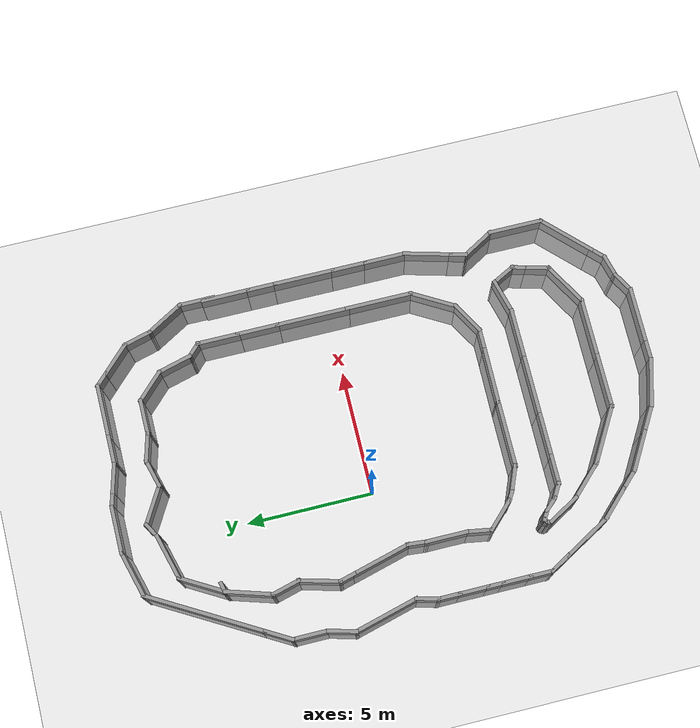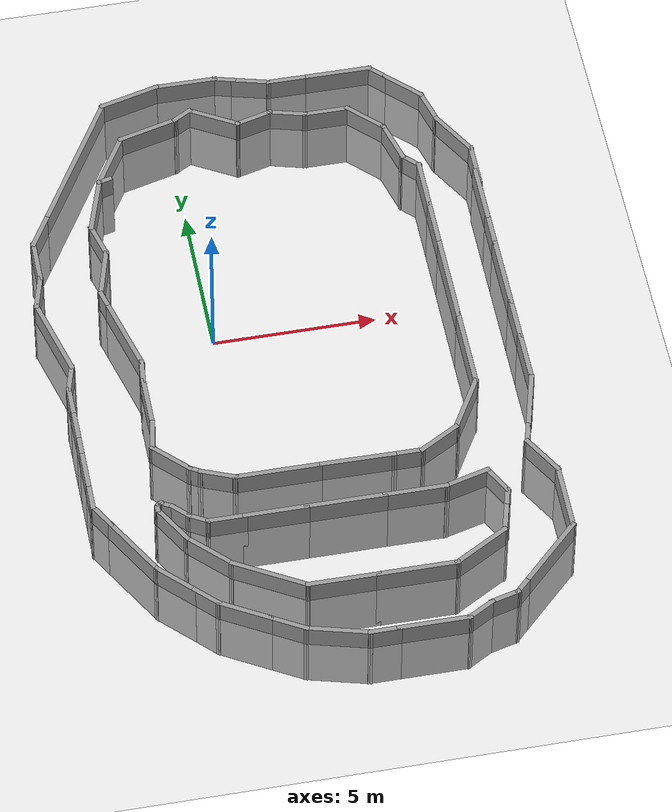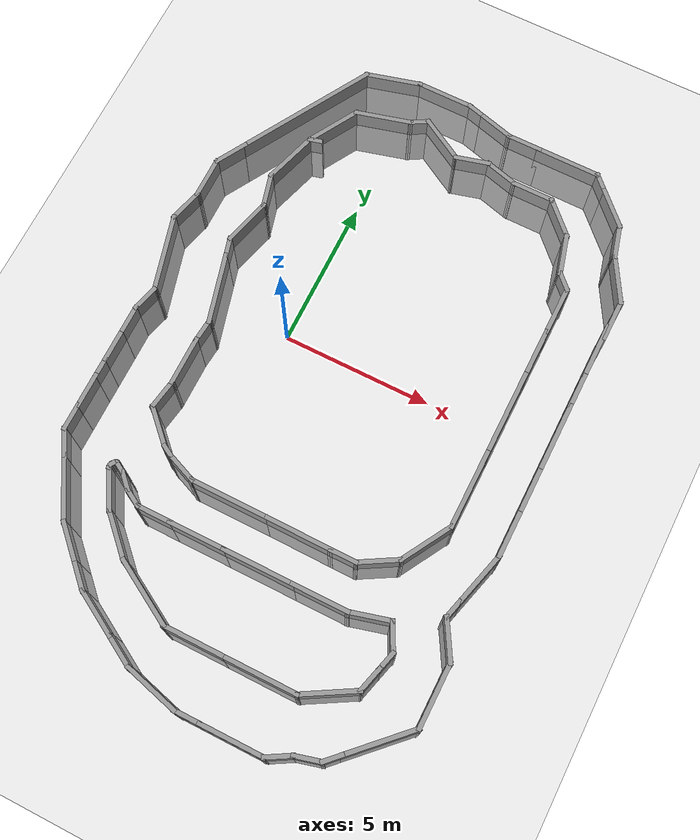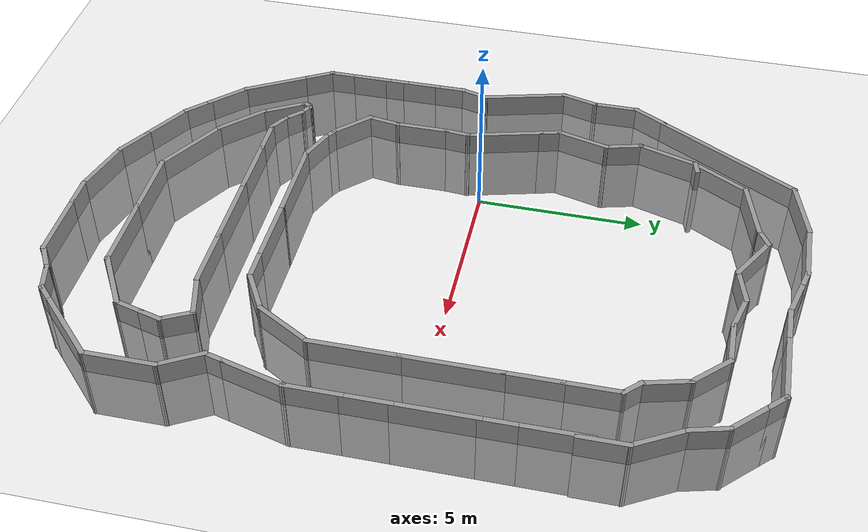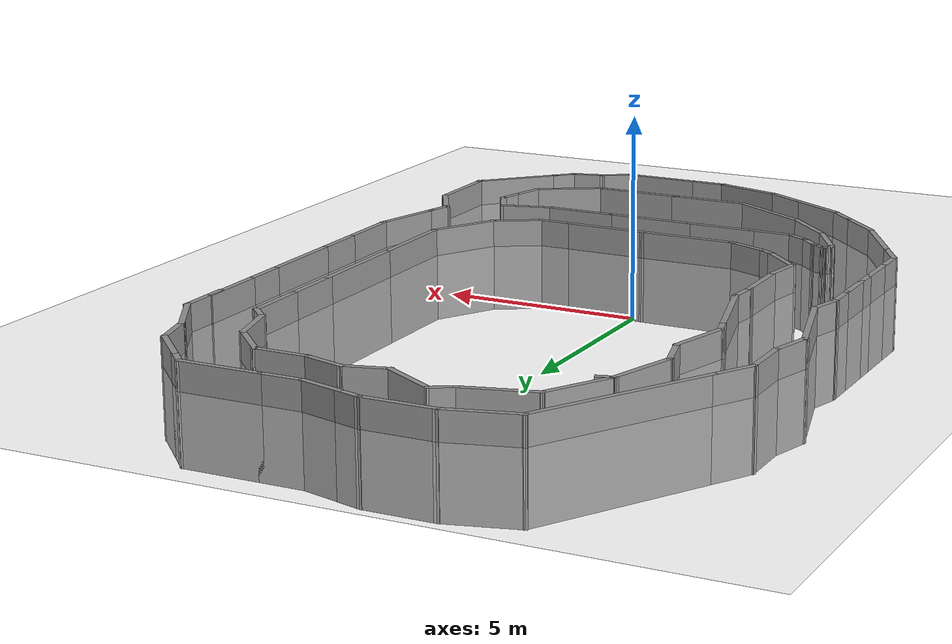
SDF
<sdf version="1.7">
 <world name="default">
  <model name="ground_plane">
   <static>1</static>
   <link name="link">
    <collision name="collision">
     <geometry><plane><normal>0 0 1</normal><size>100 100</size></plane></geometry>
     <surface>
      <contact><collide_bitmask>65535</collide_bitmask></contact>
      <friction><ode><mu>100</mu><mu2>50</mu2></ode></friction>
     </surface>
    </collision>
    <visual name="visual">
     <cast_shadows>0</cast_shadows>
     <geometry><plane><normal>0 0 1</normal><size>100 100</size></plane></geometry>
     <material>
      <script><uri>file://media/materials/scripts/gazebo.material</uri><name>Gazebo/Grey</name></script>
     </material>
    </visual>
   </link>
  </model>
  <model name="shortcut">
   <pose>2 -1 -1.81684 0 -0 0</pose>
   <link name="Wall_0">
    <collision name="Wall_0_Collision">
     <geometry><box><size>1.75 0.15 2.5</size></box></geometry>
     <pose>0 0 1.25 0 -0 0</pose>
    </collision>
    <visual name="Wall_0_Visual">
     <pose>0 0 1.25 0 -0 0</pose>
     <geometry><box><size>1.75 0.15 2.5</size></box></geometry>
     <material>
      <script><uri>file://media/materials/scripts/gazebo.material</uri><name>Gazebo/Grey</name></script>
      <ambient>1 1 1 1</ambient>
     </material>
     <meta><layer>0</layer></meta>
    </visual>
    <pose>-2.93168 -9.47381 0 0 -0 2.61799</pose>
   </link>
   <link name="Wall_1">
    <collision name="Wall_1_Collision">
     <geometry><box><size>1 0.15 2.5</size></box></geometry>
     <pose>0 0 1.25 0 -0 0</pose>
    </collision>
    <visual name="Wall_1_Visual">
     <pose>0 0 1.25 0 -0 0</pose>
     <geometry><box><size>1 0.15 2.5</size></box></geometry>
     <material>
      <script><uri>file://media/materials/scripts/gazebo.material</uri><name>Gazebo/Grey</name></script>
      <ambient>1 1 1 1</ambient>
     </material>
     <meta><layer>0</layer></meta>
    </visual>
    <pose>-3.92502 -8.77329 0 0 -0 2.35619</pose>
   </link>
   <link name="Wall_10">
    <collision name="Wall_10_Collision">
     <geometry><box><size>1 0.15 2.5</size></box></geometry>
     <pose>0 0 1.25 0 -0 0</pose>
    </collision>
    <visual name="Wall_10_Visual">
     <pose>0 0 1.25 0 -0 0</pose>
     <geometry><box><size>1 0.15 2.5</size></box></geometry>
     <material>
      <script><uri>file://media/materials/scripts/gazebo.material</uri><name>Gazebo/Grey</name></script>
      <ambient>1 1 1 1</ambient>
     </material>
     <meta><layer>0</layer></meta>
    </visual>
    <pose>-6.54514 -0.052886 0 0 -0 1.309</pose>
   </link>
   <link name="Wall_100">
    <collision name="Wall_100_Collision">
     <geometry><box><size>1 0.15 2.5</size></box></geometry>
     <pose>0 0 1.25 0 -0 0</pose>
    </collision>
    <visual name="Wall_100_Visual">
     <pose>0 0 1.25 0 -0 0</pose>
     <geometry><box><size>1 0.15 2.5</size></box></geometry>
     <material>
      <script><uri>file://media/materials/scripts/gazebo.material</uri><name>Gazebo/Grey</name></script>
      <ambient>1 1 1 1</ambient>
     </material>
     <meta><layer>0</layer></meta>
    </visual>
    <pose>5.20544 -7.56122 0 0 -0 1.309</pose>
   </link>
   <link name="Wall_101">
    <collision name="Wall_101_Collision">
     <geometry><box><size>0.75 0.15 2.5</size></box></geometry>
     <pose>0 0 1.25 0 -0 0</pose>
    </collision>
    <visual name="Wall_101_Visual">
     <pose>0 0 1.25 0 -0 0</pose>
     <geometry><box><size>0.75 0.15 2.5</size></box></geometry>
     <material>
      <script><uri>file://media/materials/scripts/gazebo.material</uri><name>Gazebo/Grey</name></script>
      <ambient>1 1 1 1</ambient>
     </material>
     <meta><layer>0</layer></meta>
    </visual>
    <pose>5.39309 -6.86093 0 0 -0 1.309</pose>
   </link>
   <link name="Wall_102">
    <collision name="Wall_102_Collision">
     <geometry><box><size>1.09132 0.15 2.5</size></box></geometry>
     <pose>0 0 1.25 0 -0 0</pose>
    </collision>
    <visual name="Wall_102_Visual">
     <pose>0 0 1.25 0 -0 0</pose>
     <geometry><box><size>1.09132 0.15 2.5</size></box></geometry>
     <material>
      <script><uri>file://media/materials/scripts/gazebo.material</uri><name>Gazebo/Grey</name></script>
      <ambient>1 1 1 1</ambient>
     </material>
     <meta><layer>0</layer></meta>
    </visual>
    <pose>5.25504 -6.15282 0 0 -0 2.04684</pose>
   </link>
   <link name="Wall_11">
    <collision name="Wall_11_Collision">
     <geometry><box><size>2.75 0.15 2.5</size></box></geometry>
     <pose>0 0 1.25 0 -0 0</pose>
    </collision>
    <visual name="Wall_11_Visual">
     <pose>0 0 1.25 0 -0 0</pose>
     <geometry><box><size>2.75 0.15 2.5</size></box></geometry>
     <material>
      <script><uri>file://media/materials/scripts/gazebo.material</uri><name>Gazebo/Grey</name></script>
      <ambient>1 1 1 1</ambient>
     </material>
     <meta><layer>0</layer></meta>
    </visual>
    <pose>-6.7716 1.61334 0 0 -0 1.8326</pose>
   </link>
   <link name="Wall_12">
    <collision name="Wall_12_Collision">
     <geometry><box><size>1.25 0.15 2.5</size></box></geometry>
     <pose>0 0 1.25 0 -0 0</pose>
    </collision>
    <visual name="Wall_12_Visual">
     <pose>0 0 1.25 0 -0 0</pose>
     <geometry><box><size>1.25 0.15 2.5</size></box></geometry>
     <material>
      <script><uri>file://media/materials/scripts/gazebo.material</uri><name>Gazebo/Grey</name></script>
      <ambient>1 1 1 1</ambient>
     </material>
     <meta><layer>0</layer></meta>
    </visual>
    <pose>-6.96572 3.4003 0 0 -0 1.309</pose>
   </link>
   <link name="Wall_13">
    <collision name="Wall_13_Collision">
     <geometry><box><size>1.5 0.15 2.5</size></box></geometry>
     <pose>0 0 1.25 0 -0 0</pose>
    </collision>
    <visual name="Wall_13_Visual">
     <pose>0 0 1.25 0 -0 0</pose>
     <geometry><box><size>1.5 0.15 2.5</size></box></geometry>
     <material>
      <script><uri>file://media/materials/scripts/gazebo.material</uri><name>Gazebo/Grey</name></script>
      <ambient>1 1 1 1</ambient>
     </material>
     <meta><layer>0</layer></meta>
    </visual>
    <pose>-6.82337 4.60656 0 0 -0 1.5708</pose>
   </link>
   <link name="Wall_14">
    <collision name="Wall_14_Collision">
     <geometry><box><size>1.25 0.15 2.5</size></box></geometry>
     <pose>0 0 1.25 0 -0 0</pose>
    </collision>
    <visual name="Wall_14_Visual">
     <pose>0 0 1.25 0 -0 0</pose>
     <geometry><box><size>1.25 0.15 2.5</size></box></geometry>
     <material>
      <script><uri>file://media/materials/scripts/gazebo.material</uri><name>Gazebo/Grey</name></script>
      <ambient>1 1 1 1</ambient>
     </material>
     <meta><layer>0</layer></meta>
    </visual>
    <pose>-6.54837 5.75787 0 0 -0 1.0472</pose>
   </link>
   <link name="Wall_15">
    <collision name="Wall_15_Collision">
     <geometry><box><size>5 0.15 2.5</size></box></geometry>
     <pose>0 0 1.25 0 -0 0</pose>
    </collision>
    <visual name="Wall_15_Visual">
     <pose>0 0 1.25 0 -0 0</pose>
     <geometry><box><size>5 0.15 2.5</size></box></geometry>
     <material>
      <script><uri>file://media/materials/scripts/gazebo.material</uri><name>Gazebo/Grey</name></script>
      <ambient>1 1 1 1</ambient>
     </material>
     <meta><layer>0</layer></meta>
    </visual>
    <pose>-5.06087 8.3343 0 0 -0 1.0472</pose>
   </link>
   <link name="Wall_17">
    <collision name="Wall_17_Collision">
     <geometry><box><size>1.25 0.15 2.5</size></box></geometry>
     <pose>0 0 1.25 0 -0 0</pose>
    </collision>
    <visual name="Wall_17_Visual">
     <pose>0 0 1.25 0 -0 0</pose>
     <geometry><box><size>1.25 0.15 2.5</size></box></geometry>
     <material>
      <script><uri>file://media/materials/scripts/gazebo.material</uri><name>Gazebo/Grey</name></script>
      <ambient>1 1 1 1</ambient>
     </material>
     <meta><layer>0</layer></meta>
    </visual>
    <pose>-1.76254 -10.1488 0 0 -0 -0.523599</pose>
   </link>
   <link name="Wall_18">
    <collision name="Wall_18_Collision">
     <geometry><box><size>2 0.15 2.5</size></box></geometry>
     <pose>0 0 1.25 0 -0 0</pose>
    </collision>
    <visual name="Wall_18_Visual">
     <pose>0 0 1.25 0 -0 0</pose>
     <geometry><box><size>2 0.15 2.5</size></box></geometry>
     <material>
      <script><uri>file://media/materials/scripts/gazebo.material</uri><name>Gazebo/Grey</name></script>
      <ambient>1 1 1 1</ambient>
     </material>
     <meta><layer>0</layer></meta>
    </visual>
    <pose>-0.392749 -10.6632 0 0 -0 -0.261799</pose>
   </link>
   <link name="Wall_19">
    <collision name="Wall_19_Collision">
     <geometry><box><size>1 0.15 2.5</size></box></geometry>
     <pose>0 0 1.25 0 -0 0</pose>
    </collision>
    <visual name="Wall_19_Visual">
     <pose>0 0 1.25 0 -0 0</pose>
     <geometry><box><size>1 0.15 2.5</size></box></geometry>
     <material>
      <script><uri>file://media/materials/scripts/gazebo.material</uri><name>Gazebo/Grey</name></script>
      <ambient>1 1 1 1</ambient>
     </material>
     <meta><layer>0</layer></meta>
    </visual>
    <pose>0.925733 -10.9026 0 0 -0 0</pose>
   </link>
   <link name="Wall_2">
    <collision name="Wall_2_Collision">
     <geometry><box><size>1.5 0.15 2.5</size></box></geometry>
     <pose>0 0 1.25 0 -0 0</pose>
    </collision>
    <visual name="Wall_2_Visual">
     <pose>0 0 1.25 0 -0 0</pose>
     <geometry><box><size>1.5 0.15 2.5</size></box></geometry>
     <material>
      <script><uri>file://media/materials/scripts/gazebo.material</uri><name>Gazebo/Grey</name></script>
      <ambient>1 1 1 1</ambient>
     </material>
     <meta><layer>0</layer></meta>
    </visual>
    <pose>-4.70284 -7.99548 0 0 -0 2.35619</pose>
   </link>
   <link name="Wall_20">
    <collision name="Wall_20_Collision">
     <geometry><box><size>2.25 0.15 2.5</size></box></geometry>
     <pose>0 0 1.25 0 -0 0</pose>
    </collision>
    <visual name="Wall_20_Visual">
     <pose>0 0 1.25 0 -0 0</pose>
     <geometry><box><size>2.25 0.15 2.5</size></box></geometry>
     <material>
      <script><uri>file://media/materials/scripts/gazebo.material</uri><name>Gazebo/Grey</name></script>
      <ambient>1 1 1 1</ambient>
     </material>
     <meta><layer>0</layer></meta>
    </visual>
    <pose>2.40073 -10.9026 0 0 -0 0</pose>
   </link>
   <link name="Wall_21">
    <collision name="Wall_21_Collision">
     <geometry><box><size>1 0.15 2.5</size></box></geometry>
     <pose>0 0 1.25 0 -0 0</pose>
    </collision>
    <visual name="Wall_21_Visual">
     <pose>0 0 1.25 0 -0 0</pose>
     <geometry><box><size>1 0.15 2.5</size></box></geometry>
     <material>
      <script><uri>file://media/materials/scripts/gazebo.material</uri><name>Gazebo/Grey</name></script>
      <ambient>1 1 1 1</ambient>
     </material>
     <meta><layer>0</layer></meta>
    </visual>
    <pose>3.81879 -10.6901 0 0 -0 0.523599</pose>
   </link>
   <link name="Wall_22">
    <collision name="Wall_22_Collision">
     <geometry><box><size>1 0.15 2.5</size></box></geometry>
     <pose>0 0 1.25 0 -0 0</pose>
    </collision>
    <visual name="Wall_22_Visual">
     <pose>0 0 1.25 0 -0 0</pose>
     <geometry><box><size>1 0.15 2.5</size></box></geometry>
     <material>
      <script><uri>file://media/materials/scripts/gazebo.material</uri><name>Gazebo/Grey</name></script>
      <ambient>1 1 1 1</ambient>
     </material>
     <meta><layer>0</layer></meta>
    </visual>
    <pose>4.59737 -10.3676 0 0 -0 0.261799</pose>
   </link>
   <link name="Wall_23">
    <collision name="Wall_23_Collision">
     <geometry><box><size>0.75 0.15 2.5</size></box></geometry>
     <pose>0 0 1.25 0 -0 0</pose>
    </collision>
    <visual name="Wall_23_Visual">
     <pose>0 0 1.25 0 -0 0</pose>
     <geometry><box><size>0.75 0.15 2.5</size></box></geometry>
     <material>
      <script><uri>file://media/materials/scripts/gazebo.material</uri><name>Gazebo/Grey</name></script>
      <ambient>1 1 1 1</ambient>
     </material>
     <meta><layer>0</layer></meta>
    </visual>
    <pose>5.22002 -10.0455 0 0 -0 0.785398</pose>
   </link>
   <link name="Wall_24">
    <collision name="Wall_24_Collision">
     <geometry><box><size>2.5 0.15 2.5</size></box></geometry>
     <pose>0 0 1.25 0 -0 0</pose>
    </collision>
    <visual name="Wall_24_Visual">
     <pose>0 0 1.25 0 -0 0</pose>
     <geometry><box><size>2.5 0.15 2.5</size></box></geometry>
     <material>
      <script><uri>file://media/materials/scripts/gazebo.material</uri><name>Gazebo/Grey</name></script>
      <ambient>1 1 1 1</ambient>
     </material>
     <meta><layer>0</layer></meta>
    </visual>
    <pose>6.26301 -9.00252 0 0 -0 0.785398</pose>
   </link>
   <link name="Wall_25">
    <collision name="Wall_25_Collision">
     <geometry><box><size>2.25 0.15 2.5</size></box></geometry>
     <pose>0 0 1.25 0 -0 0</pose>
    </collision>
    <visual name="Wall_25_Visual">
     <pose>0 0 1.25 0 -0 0</pose>
     <geometry><box><size>2.25 0.15 2.5</size></box></geometry>
     <material>
      <script><uri>file://media/materials/scripts/gazebo.material</uri><name>Gazebo/Grey</name></script>
      <ambient>1 1 1 1</ambient>
     </material>
     <meta><layer>0</layer></meta>
    </visual>
    <pose>7.09386 -7.12167 0 0 -0 1.5708</pose>
   </link>
   <link name="Wall_26">
    <collision name="Wall_26_Collision">
     <geometry><box><size>1.5 0.15 2.5</size></box></geometry>
     <pose>0 0 1.25 0 -0 0</pose>
    </collision>
    <visual name="Wall_26_Visual">
     <pose>0 0 1.25 0 -0 0</pose>
     <geometry><box><size>1.5 0.15 2.5</size></box></geometry>
     <material>
      <script><uri>file://media/materials/scripts/gazebo.material</uri><name>Gazebo/Grey</name></script>
      <ambient>1 1 1 1</ambient>
     </material>
     <meta><layer>0</layer></meta>
    </visual>
    <pose>6.75636 -5.4871 0 0 -0 2.0944</pose>
   </link>
   <link name="Wall_27">
    <collision name="Wall_27_Collision">
     <geometry><box><size>0.75 0.15 2.5</size></box></geometry>
     <pose>0 0 1.25 0 -0 0</pose>
    </collision>
    <visual name="Wall_27_Visual">
     <pose>0 0 1.25 0 -0 0</pose>
     <geometry><box><size>0.75 0.15 2.5</size></box></geometry>
     <material>
      <script><uri>file://media/materials/scripts/gazebo.material</uri><name>Gazebo/Grey</name></script>
      <ambient>1 1 1 1</ambient>
     </material>
     <meta><layer>0</layer></meta>
    </visual>
    <pose>6.4965 -4.61276 0 0 -0 1.309</pose>
   </link>
   <link name="Wall_28">
    <collision name="Wall_28_Collision">
     <geometry><box><size>2 0.15 2.5</size></box></geometry>
     <pose>0 0 1.25 0 -0 0</pose>
    </collision>
    <visual name="Wall_28_Visual">
     <pose>0 0 1.25 0 -0 0</pose>
     <geometry><box><size>2 0.15 2.5</size></box></geometry>
     <material>
      <script><uri>file://media/materials/scripts/gazebo.material</uri><name>Gazebo/Grey</name></script>
      <ambient>1 1 1 1</ambient>
     </material>
     <meta><layer>0</layer></meta>
    </visual>
    <pose>6.81356 -3.4295 0 0 -0 1.309</pose>
   </link>
   <link name="Wall_29">
    <collision name="Wall_29_Collision">
     <geometry><box><size>1.75 0.15 2.5</size></box></geometry>
     <pose>0 0 1.25 0 -0 0</pose>
    </collision>
    <visual name="Wall_29_Visual">
     <pose>0 0 1.25 0 -0 0</pose>
     <geometry><box><size>1.75 0.15 2.5</size></box></geometry>
     <material>
      <script><uri>file://media/materials/scripts/gazebo.material</uri><name>Gazebo/Grey</name></script>
      <ambient>1 1 1 1</ambient>
     </material>
     <meta><layer>0</layer></meta>
    </visual>
    <pose>7.05296 -1.73602 0 0 -0 1.5708</pose>
   </link>
   <link name="Wall_3">
    <collision name="Wall_3_Collision">
     <geometry><box><size>2.25 0.15 2.5</size></box></geometry>
     <pose>0 0 1.25 0 -0 0</pose>
    </collision>
    <visual name="Wall_3_Visual">
     <pose>0 0 1.25 0 -0 0</pose>
     <geometry><box><size>2.25 0.15 2.5</size></box></geometry>
     <material>
      <script><uri>file://media/materials/scripts/gazebo.material</uri><name>Gazebo/Grey</name></script>
      <ambient>1 1 1 1</ambient>
     </material>
     <meta><layer>0</layer></meta>
    </visual>
    <pose>-5.70513 -6.60885 0 0 -0 2.0944</pose>
   </link>
   <link name="Wall_30">
    <collision name="Wall_30_Collision">
     <geometry><box><size>1.5 0.15 2.5</size></box></geometry>
     <pose>0 0 1.25 0 -0 0</pose>
    </collision>
    <visual name="Wall_30_Visual">
     <pose>0 0 1.25 0 -0 0</pose>
     <geometry><box><size>1.5 0.15 2.5</size></box></geometry>
     <material>
      <script><uri>file://media/materials/scripts/gazebo.material</uri><name>Gazebo/Grey</name></script>
      <ambient>1 1 1 1</ambient>
     </material>
     <meta><layer>0</layer></meta>
    </visual>
    <pose>7.05296 -0.261016 0 0 -0 1.5708</pose>
   </link>
   <link name="Wall_31">
    <collision name="Wall_31_Collision">
     <geometry><box><size>2.5 0.15 2.5</size></box></geometry>
     <pose>0 0 1.25 0 -0 0</pose>
    </collision>
    <visual name="Wall_31_Visual">
     <pose>0 0 1.25 0 -0 0</pose>
     <geometry><box><size>2.5 0.15 2.5</size></box></geometry>
     <material>
      <script><uri>file://media/materials/scripts/gazebo.material</uri><name>Gazebo/Grey</name></script>
      <ambient>1 1 1 1</ambient>
     </material>
     <meta><layer>0</layer></meta>
    </visual>
    <pose>7.05296 1.58899 0 0 -0 1.5708</pose>
   </link>
   <link name="Wall_32">
    <collision name="Wall_32_Collision">
     <geometry><box><size>1.25 0.15 2.5</size></box></geometry>
     <pose>0 0 1.25 0 -0 0</pose>
    </collision>
    <visual name="Wall_32_Visual">
     <pose>0 0 1.25 0 -0 0</pose>
     <geometry><box><size>1.25 0.15 2.5</size></box></geometry>
     <material>
      <script><uri>file://media/materials/scripts/gazebo.material</uri><name>Gazebo/Grey</name></script>
      <ambient>1 1 1 1</ambient>
     </material>
     <meta><layer>0</layer></meta>
    </visual>
    <pose>7.05296 3.31398 0 0 -0 1.5708</pose>
   </link>
   <link name="Wall_35">
    <collision name="Wall_35_Collision">
     <geometry><box><size>2 0.15 2.5</size></box></geometry>
     <pose>0 0 1.25 0 -0 0</pose>
    </collision>
    <visual name="Wall_35_Visual">
     <pose>0 0 1.25 0 -0 0</pose>
     <geometry><box><size>2 0.15 2.5</size></box></geometry>
     <material>
      <script><uri>file://media/materials/scripts/gazebo.material</uri><name>Gazebo/Grey</name></script>
      <ambient>1 1 1 1</ambient>
     </material>
     <meta><layer>0</layer></meta>
    </visual>
    <pose>7.05296 4.78899 0 0 -0 1.5708</pose>
   </link>
   <link name="Wall_38">
    <collision name="Wall_38_Collision">
     <geometry><box><size>2 0.15 2.5</size></box></geometry>
     <pose>0 0 1.25 0 -0 0</pose>
    </collision>
    <visual name="Wall_38_Visual">
     <pose>0 0 1.25 0 -0 0</pose>
     <geometry><box><size>2 0.15 2.5</size></box></geometry>
     <material>
      <script><uri>file://media/materials/scripts/gazebo.material</uri><name>Gazebo/Grey</name></script>
      <ambient>1 1 1 1</ambient>
     </material>
     <meta><layer>0</layer></meta>
    </visual>
    <pose>-2.95488 10.6738 0 0 -0 0.261799</pose>
   </link>
   <link name="Wall_39">
    <collision name="Wall_39_Collision">
     <geometry><box><size>2 0.15 2.5</size></box></geometry>
     <pose>0 0 1.25 0 -0 0</pose>
    </collision>
    <visual name="Wall_39_Visual">
     <pose>0 0 1.25 0 -0 0</pose>
     <geometry><box><size>2 0.15 2.5</size></box></geometry>
     <material>
      <script><uri>file://media/materials/scripts/gazebo.material</uri><name>Gazebo/Grey</name></script>
      <ambient>1 1 1 1</ambient>
     </material>
     <meta><layer>0</layer></meta>
    </visual>
    <pose>-1.1364 10.9132 0 0 -0 0</pose>
   </link>
   <link name="Wall_4">
    <collision name="Wall_4_Collision">
     <geometry><box><size>1 0.15 2.5</size></box></geometry>
     <pose>0 0 1.25 0 -0 0</pose>
    </collision>
    <visual name="Wall_4_Visual">
     <pose>0 0 1.25 0 -0 0</pose>
     <geometry><box><size>1 0.15 2.5</size></box></geometry>
     <material>
      <script><uri>file://media/materials/scripts/gazebo.material</uri><name>Gazebo/Grey</name></script>
      <ambient>1 1 1 1</ambient>
     </material>
     <meta><layer>0</layer></meta>
    </visual>
    <pose>-6.44263 -5.33146 0 0 -0 2.0944</pose>
   </link>
   <link name="Wall_40">
    <collision name="Wall_40_Collision">
     <geometry><box><size>0.75 0.15 2.5</size></box></geometry>
     <pose>0 0 1.25 0 -0 0</pose>
    </collision>
    <visual name="Wall_40_Visual">
     <pose>0 0 1.25 0 -0 0</pose>
     <geometry><box><size>0.75 0.15 2.5</size></box></geometry>
     <material>
      <script><uri>file://media/materials/scripts/gazebo.material</uri><name>Gazebo/Grey</name></script>
      <ambient>1 1 1 1</ambient>
     </material>
     <meta><layer>0</layer></meta>
    </visual>
    <pose>0.078375 10.8356 0 0 -0 -0.261799</pose>
   </link>
   <link name="Wall_41">
    <collision name="Wall_41_Collision">
     <geometry><box><size>1.25 0.15 2.5</size></box></geometry>
     <pose>0 0 1.25 0 -0 0</pose>
    </collision>
    <visual name="Wall_41_Visual">
     <pose>0 0 1.25 0 -0 0</pose>
     <geometry><box><size>1.25 0.15 2.5</size></box></geometry>
     <material>
      <script><uri>file://media/materials/scripts/gazebo.material</uri><name>Gazebo/Grey</name></script>
      <ambient>1 1 1 1</ambient>
     </material>
     <meta><layer>0</layer></meta>
    </visual>
    <pose>0.899412 10.6156 0 0 -0 -0.261799</pose>
   </link>
   <link name="Wall_42">
    <collision name="Wall_42_Collision">
     <geometry><box><size>1.25 0.15 2.5</size></box></geometry>
     <pose>0 0 1.25 0 -0 0</pose>
    </collision>
    <visual name="Wall_42_Visual">
     <pose>0 0 1.25 0 -0 0</pose>
     <geometry><box><size>1.25 0.15 2.5</size></box></geometry>
     <material>
      <script><uri>file://media/materials/scripts/gazebo.material</uri><name>Gazebo/Grey</name></script>
      <ambient>1 1 1 1</ambient>
     </material>
     <meta><layer>0</layer></meta>
    </visual>
    <pose>1.98067 10.4732 0 0 -0 0</pose>
   </link>
   <link name="Wall_43">
    <collision name="Wall_43_Collision">
     <geometry><box><size>2.25 0.15 2.5</size></box></geometry>
     <pose>0 0 1.25 0 -0 0</pose>
    </collision>
    <visual name="Wall_43_Visual">
     <pose>0 0 1.25 0 -0 0</pose>
     <geometry><box><size>2.25 0.15 2.5</size></box></geometry>
     <material>
      <script><uri>file://media/materials/scripts/gazebo.material</uri><name>Gazebo/Grey</name></script>
      <ambient>1 1 1 1</ambient>
     </material>
     <meta><layer>0</layer></meta>
    </visual>
    <pose>3.58067 10.4732 0 0 -0 0</pose>
   </link>
   <link name="Wall_44">
    <collision name="Wall_44_Collision">
     <geometry><box><size>0.75 0.15 2.5</size></box></geometry>
     <pose>0 0 1.25 0 -0 0</pose>
    </collision>
    <visual name="Wall_44_Visual">
     <pose>0 0 1.25 0 -0 0</pose>
     <geometry><box><size>0.75 0.15 2.5</size></box></geometry>
     <material>
      <script><uri>file://media/materials/scripts/gazebo.material</uri><name>Gazebo/Grey</name></script>
      <ambient>1 1 1 1</ambient>
     </material>
     <meta><layer>0</layer></meta>
    </visual>
    <pose>4.8428 10.2611 0 0 -0 -0.785398</pose>
   </link>
   <link name="Wall_45">
    <collision name="Wall_45_Collision">
     <geometry><box><size>1.5 0.15 2.5</size></box></geometry>
     <pose>0 0 1.25 0 -0 0</pose>
    </collision>
    <visual name="Wall_45_Visual">
     <pose>0 0 1.25 0 -0 0</pose>
     <geometry><box><size>1.5 0.15 2.5</size></box></geometry>
     <material>
      <script><uri>file://media/materials/scripts/gazebo.material</uri><name>Gazebo/Grey</name></script>
      <ambient>1 1 1 1</ambient>
     </material>
     <meta><layer>0</layer></meta>
    </visual>
    <pose>5.53223 9.57167 0 0 -0 -0.785398</pose>
   </link>
   <link name="Wall_46">
    <collision name="Wall_46_Collision">
     <geometry><box><size>1.25 0.15 2.5</size></box></geometry>
     <pose>0 0 1.25 0 -0 0</pose>
    </collision>
    <visual name="Wall_46_Visual">
     <pose>0 0 1.25 0 -0 0</pose>
     <geometry><box><size>1.25 0.15 2.5</size></box></geometry>
     <material>
      <script><uri>file://media/materials/scripts/gazebo.material</uri><name>Gazebo/Grey</name></script>
      <ambient>1 1 1 1</ambient>
     </material>
     <meta><layer>0</layer></meta>
    </visual>
    <pose>6.15188 8.56311 0 0 -0 -1.309</pose>
   </link>
   <link name="Wall_47">
    <collision name="Wall_47_Collision">
     <geometry><box><size>1.75 0.15 2.5</size></box></geometry>
     <pose>0 0 1.25 0 -0 0</pose>
    </collision>
    <visual name="Wall_47_Visual">
     <pose>0 0 1.25 0 -0 0</pose>
     <geometry><box><size>1.75 0.15 2.5</size></box></geometry>
     <material>
      <script><uri>file://media/materials/scripts/gazebo.material</uri><name>Gazebo/Grey</name></script>
      <ambient>1 1 1 1</ambient>
     </material>
     <meta><layer>0</layer></meta>
    </visual>
    <pose>6.69423 7.33903 0 0 -0 -1.0472</pose>
   </link>
   <link name="Wall_48">
    <collision name="Wall_48_Collision">
     <geometry><box><size>1.5 0.15 2.5</size></box></geometry>
     <pose>0 0 1.25 0 -0 0</pose>
    </collision>
    <visual name="Wall_48_Visual">
     <pose>0 0 1.25 0 -0 0</pose>
     <geometry><box><size>1.5 0.15 2.5</size></box></geometry>
     <material>
      <script><uri>file://media/materials/scripts/gazebo.material</uri><name>Gazebo/Grey</name></script>
      <ambient>1 1 1 1</ambient>
     </material>
     <meta><layer>0</layer></meta>
    </visual>
    <pose>7.09423 5.97121 0 0 -0 -1.5708</pose>
   </link>
   <link name="Wall_5">
    <collision name="Wall_5_Collision">
     <geometry><box><size>1 0.15 2.5</size></box></geometry>
     <pose>0 0 1.25 0 -0 0</pose>
    </collision>
    <visual name="Wall_5_Visual">
     <pose>0 0 1.25 0 -0 0</pose>
     <geometry><box><size>1 0.15 2.5</size></box></geometry>
     <material>
      <script><uri>file://media/materials/scripts/gazebo.material</uri><name>Gazebo/Grey</name></script>
      <ambient>1 1 1 1</ambient>
     </material>
     <meta><layer>0</layer></meta>
    </visual>
    <pose>-6.65513 -4.5384 0 0 -0 1.5708</pose>
   </link>
   <link name="Wall_50">
    <collision name="Wall_50_Collision">
     <geometry><box><size>2 0.15 2.5</size></box></geometry>
     <pose>0 0 1.25 0 -0 0</pose>
    </collision>
    <visual name="Wall_50_Visual">
     <pose>0 0 1.25 0 -0 0</pose>
     <geometry><box><size>2 0.15 2.5</size></box></geometry>
     <material>
      <script><uri>file://media/materials/scripts/gazebo.material</uri><name>Gazebo/Grey</name></script>
      <ambient>1 1 1 1</ambient>
     </material>
     <meta><layer>0</layer></meta>
    </visual>
    <pose>-3.97653 8.1804 0 0 -0 1.0472</pose>
   </link>
   <link name="Wall_51">
    <collision name="Wall_51_Collision">
     <geometry><box><size>2 0.15 2.5</size></box></geometry>
     <pose>0 0 1.25 0 -0 0</pose>
    </collision>
    <visual name="Wall_51_Visual">
     <pose>0 0 1.25 0 -0 0</pose>
     <geometry><box><size>2 0.15 2.5</size></box></geometry>
     <material>
      <script><uri>file://media/materials/scripts/gazebo.material</uri><name>Gazebo/Grey</name></script>
      <ambient>1 1 1 1</ambient>
     </material>
     <meta><layer>0</layer></meta>
    </visual>
    <pose>-2.62055 9.22089 0 0 -0 0.261799</pose>
   </link>
   <link name="Wall_52">
    <collision name="Wall_52_Collision">
     <geometry><box><size>0.75 0.15 2.5</size></box></geometry>
     <pose>0 0 1.25 0 -0 0</pose>
    </collision>
    <visual name="Wall_52_Visual">
     <pose>0 0 1.25 0 -0 0</pose>
     <geometry><box><size>0.75 0.15 2.5</size></box></geometry>
     <material>
      <script><uri>file://media/materials/scripts/gazebo.material</uri><name>Gazebo/Grey</name></script>
      <ambient>1 1 1 1</ambient>
     </material>
     <meta><layer>0</layer></meta>
    </visual>
    <pose>-1.46726 9.61029 0 0 -0 0.523599</pose>
   </link>
   <link name="Wall_53">
    <collision name="Wall_53_Collision">
     <geometry><box><size>1.75 0.15 2.5</size></box></geometry>
     <pose>0 0 1.25 0 -0 0</pose>
    </collision>
    <visual name="Wall_53_Visual">
     <pose>0 0 1.25 0 -0 0</pose>
     <geometry><box><size>1.75 0.15 2.5</size></box></geometry>
     <material>
      <script><uri>file://media/materials/scripts/gazebo.material</uri><name>Gazebo/Grey</name></script>
      <ambient>1 1 1 1</ambient>
     </material>
     <meta><layer>0</layer></meta>
    </visual>
    <pose>-0.514631 9.36029 0 0 -0 -0.523599</pose>
   </link>
   <link name="Wall_54">
    <collision name="Wall_54_Collision">
     <geometry><box><size>1.25 0.15 2.5</size></box></geometry>
     <pose>0 0 1.25 0 -0 0</pose>
    </collision>
    <visual name="Wall_54_Visual">
     <pose>0 0 1.25 0 -0 0</pose>
     <geometry><box><size>1.25 0.15 2.5</size></box></geometry>
     <material>
      <script><uri>file://media/materials/scripts/gazebo.material</uri><name>Gazebo/Grey</name></script>
      <ambient>1 1 1 1</ambient>
     </material>
     <meta><layer>0</layer></meta>
    </visual>
    <pose>0.709448 9.10264 0 0 -0 0.261799</pose>
   </link>
   <link name="Wall_55">
    <collision name="Wall_55_Collision">
     <geometry><box><size>1.25 0.15 2.5</size></box></geometry>
     <pose>0 0 1.25 0 -0 0</pose>
    </collision>
    <visual name="Wall_55_Visual">
     <pose>0 0 1.25 0 -0 0</pose>
     <geometry><box><size>1.25 0.15 2.5</size></box></geometry>
     <material>
      <script><uri>file://media/materials/scripts/gazebo.material</uri><name>Gazebo/Grey</name></script>
      <ambient>1 1 1 1</ambient>
     </material>
     <meta><layer>0</layer></meta>
    </visual>
    <pose>1.77197 9.10264 0 0 -0 -0.261799</pose>
   </link>
   <link name="Wall_56">
    <collision name="Wall_56_Collision">
     <geometry><box><size>1.5 0.15 2.5</size></box></geometry>
     <pose>0 0 1.25 0 -0 0</pose>
    </collision>
    <visual name="Wall_56_Visual">
     <pose>0 0 1.25 0 -0 0</pose>
     <geometry><box><size>1.5 0.15 2.5</size></box></geometry>
     <material>
      <script><uri>file://media/materials/scripts/gazebo.material</uri><name>Gazebo/Grey</name></script>
      <ambient>1 1 1 1</ambient>
     </material>
     <meta><layer>0</layer></meta>
    </visual>
    <pose>2.97823 8.96029 0 0 -0 0</pose>
   </link>
   <link name="Wall_57">
    <collision name="Wall_57_Collision">
     <geometry><box><size>1.5 0.15 2.5</size></box></geometry>
     <pose>0 0 1.25 0 -0 0</pose>
    </collision>
    <visual name="Wall_57_Visual">
     <pose>0 0 1.25 0 -0 0</pose>
     <geometry><box><size>1.5 0.15 2.5</size></box></geometry>
     <material>
      <script><uri>file://media/materials/scripts/gazebo.material</uri><name>Gazebo/Grey</name></script>
      <ambient>1 1 1 1</ambient>
     </material>
     <meta><layer>0</layer></meta>
    </visual>
    <pose>4.13052 8.48299 0 0 -0 -0.785398</pose>
   </link>
   <link name="Wall_58">
    <collision name="Wall_58_Collision">
     <geometry><box><size>1.5 0.15 2.5</size></box></geometry>
     <pose>0 0 1.25 0 -0 0</pose>
    </collision>
    <visual name="Wall_58_Visual">
     <pose>0 0 1.25 0 -0 0</pose>
     <geometry><box><size>1.5 0.15 2.5</size></box></geometry>
     <material>
      <script><uri>file://media/materials/scripts/gazebo.material</uri><name>Gazebo/Grey</name></script>
      <ambient>1 1 1 1</ambient>
     </material>
     <meta><layer>0</layer></meta>
    </visual>
    <pose>4.78252 7.3537 0 0 -0 -1.309</pose>
   </link>
   <link name="Wall_59">
    <collision name="Wall_59_Collision">
     <geometry><box><size>0.75 0.15 2.5</size></box></geometry>
     <pose>0 0 1.25 0 -0 0</pose>
    </collision>
    <visual name="Wall_59_Visual">
     <pose>0 0 1.25 0 -0 0</pose>
     <geometry><box><size>0.75 0.15 2.5</size></box></geometry>
     <material>
      <script><uri>file://media/materials/scripts/gazebo.material</uri><name>Gazebo/Grey</name></script>
      <ambient>1 1 1 1</ambient>
     </material>
     <meta><layer>0</layer></meta>
    </visual>
    <pose>5.16936 6.48956 0 0 -0 -0.785398</pose>
   </link>
   <link name="Wall_6">
    <collision name="Wall_6_Collision">
     <geometry><box><size>1.25 0.15 2.5</size></box></geometry>
     <pose>0 0 1.25 0 -0 0</pose>
    </collision>
    <visual name="Wall_6_Visual">
     <pose>0 0 1.25 0 -0 0</pose>
     <geometry><box><size>1.25 0.15 2.5</size></box></geometry>
     <material>
      <script><uri>file://media/materials/scripts/gazebo.material</uri><name>Gazebo/Grey</name></script>
      <ambient>1 1 1 1</ambient>
     </material>
     <meta><layer>0</layer></meta>
    </visual>
    <pose>-6.65513 -3.5634 0 0 -0 1.5708</pose>
   </link>
   <link name="Wall_60">
    <collision name="Wall_60_Collision">
     <geometry><box><size>1.75 0.15 2.5</size></box></geometry>
     <pose>0 0 1.25 0 -0 0</pose>
    </collision>
    <visual name="Wall_60_Visual">
     <pose>0 0 1.25 0 -0 0</pose>
     <geometry><box><size>1.75 0.15 2.5</size></box></geometry>
     <material>
      <script><uri>file://media/materials/scripts/gazebo.material</uri><name>Gazebo/Grey</name></script>
      <ambient>1 1 1 1</ambient>
     </material>
     <meta><layer>0</layer></meta>
    </visual>
    <pose>5.38149 5.47743 0 0 -0 -1.5708</pose>
   </link>
   <link name="Wall_61">
    <collision name="Wall_61_Collision">
     <geometry><box><size>1.75 0.15 2.5</size></box></geometry>
     <pose>0 0 1.25 0 -0 0</pose>
    </collision>
    <visual name="Wall_61_Visual">
     <pose>0 0 1.25 0 -0 0</pose>
     <geometry><box><size>1.75 0.15 2.5</size></box></geometry>
     <material>
      <script><uri>file://media/materials/scripts/gazebo.material</uri><name>Gazebo/Grey</name></script>
      <ambient>1 1 1 1</ambient>
     </material>
     <meta><layer>0</layer></meta>
    </visual>
    <pose>5.38149 3.87743 0 0 -0 -1.5708</pose>
   </link>
   <link name="Wall_62">
    <collision name="Wall_62_Collision">
     <geometry><box><size>3 0.15 2.5</size></box></geometry>
     <pose>0 0 1.25 0 -0 0</pose>
    </collision>
    <visual name="Wall_62_Visual">
     <pose>0 0 1.25 0 -0 0</pose>
     <geometry><box><size>3 0.15 2.5</size></box></geometry>
     <material>
      <script><uri>file://media/materials/scripts/gazebo.material</uri><name>Gazebo/Grey</name></script>
      <ambient>1 1 1 1</ambient>
     </material>
     <meta><layer>0</layer></meta>
    </visual>
    <pose>5.38149 1.65243 0 0 -0 -1.5708</pose>
   </link>
   <link name="Wall_63">
    <collision name="Wall_63_Collision">
     <geometry><box><size>2.75 0.15 2.5</size></box></geometry>
     <pose>0 0 1.25 0 -0 0</pose>
    </collision>
    <visual name="Wall_63_Visual">
     <pose>0 0 1.25 0 -0 0</pose>
     <geometry><box><size>2.75 0.15 2.5</size></box></geometry>
     <material>
      <script><uri>file://media/materials/scripts/gazebo.material</uri><name>Gazebo/Grey</name></script>
      <ambient>1 1 1 1</ambient>
     </material>
     <meta><layer>0</layer></meta>
    </visual>
    <pose>5.38149 -1.07257 0 0 -0 -1.5708</pose>
   </link>
   <link name="Wall_64">
    <collision name="Wall_64_Collision">
     <geometry><box><size>2 0.15 2.5</size></box></geometry>
     <pose>0 0 1.25 0 -0 0</pose>
    </collision>
    <visual name="Wall_64_Visual">
     <pose>0 0 1.25 0 -0 0</pose>
     <geometry><box><size>2 0.15 2.5</size></box></geometry>
     <material>
      <script><uri>file://media/materials/scripts/gazebo.material</uri><name>Gazebo/Grey</name></script>
      <ambient>1 1 1 1</ambient>
     </material>
     <meta><layer>0</layer></meta>
    </visual>
    <pose>4.91899 -3.17364 0 0 -0 -2.0944</pose>
   </link>
   <link name="Wall_65">
    <collision name="Wall_65_Collision">
     <geometry><box><size>1.5 0.15 2.5</size></box></geometry>
     <pose>0 0 1.25 0 -0 0</pose>
    </collision>
    <visual name="Wall_65_Visual">
     <pose>0 0 1.25 0 -0 0</pose>
     <geometry><box><size>1.5 0.15 2.5</size></box></geometry>
     <material>
      <script><uri>file://media/materials/scripts/gazebo.material</uri><name>Gazebo/Grey</name></script>
      <ambient>1 1 1 1</ambient>
     </material>
     <meta><layer>0</layer></meta>
    </visual>
    <pose>3.87192 -4.31221 0 0 -0 -2.61799</pose>
   </link>
   <link name="Wall_66">
    <collision name="Wall_66_Collision">
     <geometry><box><size>1 0.15 2.5</size></box></geometry>
     <pose>0 0 1.25 0 -0 0</pose>
    </collision>
    <visual name="Wall_66_Visual">
     <pose>0 0 1.25 0 -0 0</pose>
     <geometry><box><size>1 0.15 2.5</size></box></geometry>
     <material>
      <script><uri>file://media/materials/scripts/gazebo.material</uri><name>Gazebo/Grey</name></script>
      <ambient>1 1 1 1</ambient>
     </material>
     <meta><layer>0</layer></meta>
    </visual>
    <pose>2.86235 -4.64971 0 0 -0 3.14159</pose>
   </link>
   <link name="Wall_67">
    <collision name="Wall_67_Collision">
     <geometry><box><size>2.32375 0.15 2.5</size></box></geometry>
     <pose>0 0 1.25 0 -0 0</pose>
    </collision>
    <visual name="Wall_67_Visual">
     <pose>0 0 1.25 0 -0 0</pose>
     <geometry><box><size>2.32375 0.15 2.5</size></box></geometry>
     <material>
      <script><uri>file://media/materials/scripts/gazebo.material</uri><name>Gazebo/Grey</name></script>
      <ambient>1 1 1 1</ambient>
     </material>
     <meta><layer>0</layer></meta>
    </visual>
    <pose>1.35053 -4.63966 0 0 -0 3.13234</pose>
   </link>
   <link name="Wall_68">
    <collision name="Wall_68_Collision">
     <geometry><box><size>2.75 0.15 2.5</size></box></geometry>
     <pose>0 0 1.25 0 -0 0</pose>
    </collision>
    <visual name="Wall_68_Visual">
     <pose>0 0 1.25 0 -0 0</pose>
     <geometry><box><size>2.75 0.15 2.5</size></box></geometry>
     <material>
      <script><uri>file://media/materials/scripts/gazebo.material</uri><name>Gazebo/Grey</name></script>
      <ambient>1 1 1 1</ambient>
     </material>
     <meta><layer>0</layer></meta>
    </visual>
    <pose>-1.05642 -4.6296 0 0 -0 3.14159</pose>
   </link>
   <link name="Wall_69">
    <collision name="Wall_69_Collision">
     <geometry><box><size>1.19866 0.15 2.5</size></box></geometry>
     <pose>0 0 1.25 0 -0 0</pose>
    </collision>
    <visual name="Wall_69_Visual">
     <pose>0 0 1.25 0 -0 0</pose>
     <geometry><box><size>1.19866 0.15 2.5</size></box></geometry>
     <material>
      <script><uri>file://media/materials/scripts/gazebo.material</uri><name>Gazebo/Grey</name></script>
      <ambient>1 1 1 1</ambient>
     </material>
     <meta><layer>0</layer></meta>
    </visual>
    <pose>-2.82221 -4.4326 0 0 -0 2.75642</pose>
   </link>
   <link name="Wall_7">
    <collision name="Wall_7_Collision">
     <geometry><box><size>0.75 0.15 2.5</size></box></geometry>
     <pose>0 0 1.25 0 -0 0</pose>
    </collision>
    <visual name="Wall_7_Visual">
     <pose>0 0 1.25 0 -0 0</pose>
     <geometry><box><size>0.75 0.15 2.5</size></box></geometry>
     <material>
      <script><uri>file://media/materials/scripts/gazebo.material</uri><name>Gazebo/Grey</name></script>
      <ambient>1 1 1 1</ambient>
     </material>
     <meta><layer>0</layer></meta>
    </visual>
    <pose>-6.65513 -2.7134 0 0 -0 1.5708</pose>
   </link>
   <link name="Wall_70">
    <collision name="Wall_70_Collision">
     <geometry><box><size>0.5 0.15 2.5</size></box></geometry>
     <pose>0 0 1.25 0 -0 0</pose>
    </collision>
    <visual name="Wall_70_Visual">
     <pose>0 0 1.25 0 -0 0</pose>
     <geometry><box><size>0.5 0.15 2.5</size></box></geometry>
     <material>
      <script><uri>file://media/materials/scripts/gazebo.material</uri><name>Gazebo/Grey</name></script>
      <ambient>1 1 1 1</ambient>
     </material>
     <meta><layer>0</layer></meta>
    </visual>
    <pose>-3.45968 -4.1481 0 0 -0 2.61799</pose>
   </link>
   <link name="Wall_71">
    <collision name="Wall_71_Collision">
     <geometry><box><size>1.5 0.15 2.5</size></box></geometry>
     <pose>0 0 1.25 0 -0 0</pose>
    </collision>
    <visual name="Wall_71_Visual">
     <pose>0 0 1.25 0 -0 0</pose>
     <geometry><box><size>1.5 0.15 2.5</size></box></geometry>
     <material>
      <script><uri>file://media/materials/scripts/gazebo.material</uri><name>Gazebo/Grey</name></script>
      <ambient>1 1 1 1</ambient>
     </material>
     <meta><layer>0</layer></meta>
    </visual>
    <pose>-4.08853 -3.58331 0 0 -0 2.35619</pose>
   </link>
   <link name="Wall_72">
    <collision name="Wall_72_Collision">
     <geometry><box><size>1.10602 0.15 2.5</size></box></geometry>
     <pose>0 0 1.25 0 -0 0</pose>
    </collision>
    <visual name="Wall_72_Visual">
     <pose>0 0 1.25 0 -0 0</pose>
     <geometry><box><size>1.10602 0.15 2.5</size></box></geometry>
     <material>
      <script><uri>file://media/materials/scripts/gazebo.material</uri><name>Gazebo/Grey</name></script>
      <ambient>1 1 1 1</ambient>
     </material>
     <meta><layer>0</layer></meta>
    </visual>
    <pose>-4.48862 -2.63428 0 0 -0 1.40856</pose>
   </link>
   <link name="Wall_73">
    <collision name="Wall_73_Collision">
     <geometry><box><size>1.75 0.15 2.5</size></box></geometry>
     <pose>0 0 1.25 0 -0 0</pose>
    </collision>
    <visual name="Wall_73_Visual">
     <pose>0 0 1.25 0 -0 0</pose>
     <geometry><box><size>1.75 0.15 2.5</size></box></geometry>
     <material>
      <script><uri>file://media/materials/scripts/gazebo.material</uri><name>Gazebo/Grey</name></script>
      <ambient>1 1 1 1</ambient>
     </material>
     <meta><layer>0</layer></meta>
    </visual>
    <pose>-4.4114 -1.34505 0 0 -0 1.5708</pose>
   </link>
   <link name="Wall_74">
    <collision name="Wall_74_Collision">
     <geometry><box><size>0.880518 0.15 2.5</size></box></geometry>
     <pose>0 0 1.25 0 -0 0</pose>
    </collision>
    <visual name="Wall_74_Visual">
     <pose>0 0 1.25 0 -0 0</pose>
     <geometry><box><size>0.880518 0.15 2.5</size></box></geometry>
     <material>
      <script><uri>file://media/materials/scripts/gazebo.material</uri><name>Gazebo/Grey</name></script>
      <ambient>1 1 1 1</ambient>
     </material>
     <meta><layer>0</layer></meta>
    </visual>
    <pose>-4.37862 -0.198757 0 0 -0 1.48092</pose>
   </link>
   <link name="Wall_75">
    <collision name="Wall_75_Collision">
     <geometry><box><size>2.5 0.15 2.5</size></box></geometry>
     <pose>0 0 1.25 0 -0 0</pose>
    </collision>
    <visual name="Wall_75_Visual">
     <pose>0 0 1.25 0 -0 0</pose>
     <geometry><box><size>2.5 0.15 2.5</size></box></geometry>
     <material>
      <script><uri>file://media/materials/scripts/gazebo.material</uri><name>Gazebo/Grey</name></script>
      <ambient>1 1 1 1</ambient>
     </material>
     <meta><layer>0</layer></meta>
    </visual>
    <pose>-4.64994 1.29999 0 0 -0 1.8326</pose>
   </link>
   <link name="Wall_76">
    <collision name="Wall_76_Collision">
     <geometry><box><size>0.75 0.15 2.5</size></box></geometry>
     <pose>0 0 1.25 0 -0 0</pose>
    </collision>
    <visual name="Wall_76_Visual">
     <pose>0 0 1.25 0 -0 0</pose>
     <geometry><box><size>0.75 0.15 2.5</size></box></geometry>
     <material>
      <script><uri>file://media/materials/scripts/gazebo.material</uri><name>Gazebo/Grey</name></script>
      <ambient>1 1 1 1</ambient>
     </material>
     <meta><layer>0</layer></meta>
    </visual>
    <pose>-5.0317 2.72473 0 0 -0 1.8326</pose>
   </link>
   <link name="Wall_77">
    <collision name="Wall_77_Collision">
     <geometry><box><size>1.75 0.15 2.5</size></box></geometry>
     <pose>0 0 1.25 0 -0 0</pose>
    </collision>
    <visual name="Wall_77_Visual">
     <pose>0 0 1.25 0 -0 0</pose>
     <geometry><box><size>1.75 0.15 2.5</size></box></geometry>
     <material>
      <script><uri>file://media/materials/scripts/gazebo.material</uri><name>Gazebo/Grey</name></script>
      <ambient>1 1 1 1</ambient>
     </material>
     <meta><layer>0</layer></meta>
    </visual>
    <pose>-4.90229 3.78725 0 0 -0 1.309</pose>
   </link>
   <link name="Wall_78">
    <collision name="Wall_78_Collision">
     <geometry><box><size>1.25 0.15 2.5</size></box></geometry>
     <pose>0 0 1.25 0 -0 0</pose>
    </collision>
    <visual name="Wall_78_Visual">
     <pose>0 0 1.25 0 -0 0</pose>
     <geometry><box><size>1.25 0.15 2.5</size></box></geometry>
     <material>
      <script><uri>file://media/materials/scripts/gazebo.material</uri><name>Gazebo/Grey</name></script>
      <ambient>1 1 1 1</ambient>
     </material>
     <meta><layer>0</layer></meta>
    </visual>
    <pose>-4.83759 5.09125 0 0 -0 1.8326</pose>
   </link>
   <link name="Wall_79">
    <collision name="Wall_79_Collision">
     <geometry><box><size>1.98821 0.15 2.5</size></box></geometry>
     <pose>0 0 1.25 0 -0 0</pose>
    </collision>
    <visual name="Wall_79_Visual">
     <pose>0 0 1.25 0 -0 0</pose>
     <geometry><box><size>1.98821 0.15 2.5</size></box></geometry>
     <material>
      <script><uri>file://media/materials/scripts/gazebo.material</uri><name>Gazebo/Grey</name></script>
      <ambient>1 1 1 1</ambient>
     </material>
     <meta><layer>0</layer></meta>
    </visual>
    <pose>-4.70948 6.50092 0 0 -0 1.27212</pose>
   </link>
   <link name="Wall_8">
    <collision name="Wall_8_Collision">
     <geometry><box><size>1.25 0.15 2.5</size></box></geometry>
     <pose>0 0 1.25 0 -0 0</pose>
    </collision>
    <visual name="Wall_8_Visual">
     <pose>0 0 1.25 0 -0 0</pose>
     <geometry><box><size>1.25 0.15 2.5</size></box></geometry>
     <material>
      <script><uri>file://media/materials/scripts/gazebo.material</uri><name>Gazebo/Grey</name></script>
      <ambient>1 1 1 1</ambient>
     </material>
     <meta><layer>0</layer></meta>
    </visual>
    <pose>-6.65513 -1.8634 0 0 -0 1.5708</pose>
   </link>
   <link name="Wall_80">
    <collision name="Wall_80_Collision">
     <geometry><box><size>0.5 0.15 2.5</size></box></geometry>
     <pose>0 0 1.25 0 -0 0</pose>
    </collision>
    <visual name="Wall_80_Visual">
     <pose>0 0 1.25 0 -0 0</pose>
     <geometry><box><size>0.5 0.15 2.5</size></box></geometry>
     <material>
      <script><uri>file://media/materials/scripts/gazebo.material</uri><name>Gazebo/Grey</name></script>
      <ambient>1 1 1 1</ambient>
     </material>
     <meta><layer>0</layer></meta>
    </visual>
    <pose>-4.26999 7.42462 0 0 -0 0.261799</pose>
   </link>
   <link name="Wall_82">
    <collision name="Wall_82_Collision">
     <geometry><box><size>1.5 0.15 2.5</size></box></geometry>
     <pose>0 0 1.25 0 -0 0</pose>
    </collision>
    <visual name="Wall_82_Visual">
     <pose>0 0 1.25 0 -0 0</pose>
     <geometry><box><size>1.5 0.15 2.5</size></box></geometry>
     <material>
      <script><uri>file://media/materials/scripts/gazebo.material</uri><name>Gazebo/Grey</name></script>
      <ambient>1 1 1 1</ambient>
     </material>
     <meta><layer>0</layer></meta>
    </visual>
    <pose>4.38736 -5.9092 0 0 -0 -2.87979</pose>
   </link>
   <link name="Wall_83">
    <collision name="Wall_83_Collision">
     <geometry><box><size>2 0.15 2.5</size></box></geometry>
     <pose>0 0 1.25 0 -0 0</pose>
    </collision>
    <visual name="Wall_83_Visual">
     <pose>0 0 1.25 0 -0 0</pose>
     <geometry><box><size>2 0.15 2.5</size></box></geometry>
     <material>
      <script><uri>file://media/materials/scripts/gazebo.material</uri><name>Gazebo/Grey</name></script>
      <ambient>1 1 1 1</ambient>
     </material>
     <meta><layer>0</layer></meta>
    </visual>
    <pose>2.81036 -6.0839 0 0 -0 3.14159</pose>
   </link>
   <link name="Wall_84">
    <collision name="Wall_84_Collision">
     <geometry><box><size>2.5 0.15 2.5</size></box></geometry>
     <pose>0 0 1.25 0 -0 0</pose>
    </collision>
    <visual name="Wall_84_Visual">
     <pose>0 0 1.25 0 -0 0</pose>
     <geometry><box><size>2.5 0.15 2.5</size></box></geometry>
     <material>
      <script><uri>file://media/materials/scripts/gazebo.material</uri><name>Gazebo/Grey</name></script>
      <ambient>1 1 1 1</ambient>
     </material>
     <meta><layer>0</layer></meta>
    </visual>
    <pose>0.710356 -6.0839 0 0 -0 3.14159</pose>
   </link>
   <link name="Wall_85">
    <collision name="Wall_85_Collision">
     <geometry><box><size>2 0.15 2.5</size></box></geometry>
     <pose>0 0 1.25 0 -0 0</pose>
    </collision>
    <visual name="Wall_85_Visual">
     <pose>0 0 1.25 0 -0 0</pose>
     <geometry><box><size>2 0.15 2.5</size></box></geometry>
     <material>
      <script><uri>file://media/materials/scripts/gazebo.material</uri><name>Gazebo/Grey</name></script>
      <ambient>1 1 1 1</ambient>
     </material>
     <meta><layer>0</layer></meta>
    </visual>
    <pose>-1.38964 -6.0839 0 0 -0 3.14159</pose>
   </link>
   <link name="Wall_86">
    <collision name="Wall_86_Collision">
     <geometry><box><size>1.25 0.15 2.5</size></box></geometry>
     <pose>0 0 1.25 0 -0 0</pose>
    </collision>
    <visual name="Wall_86_Visual">
     <pose>0 0 1.25 0 -0 0</pose>
     <geometry><box><size>1.25 0.15 2.5</size></box></geometry>
     <material>
      <script><uri>file://media/materials/scripts/gazebo.material</uri><name>Gazebo/Grey</name></script>
      <ambient>1 1 1 1</ambient>
     </material>
     <meta><layer>0</layer></meta>
    </visual>
    <pose>-2.86464 -6.0839 0 0 -0 3.14159</pose>
   </link>
   <link name="Wall_87">
    <collision name="Wall_87_Collision">
     <geometry><box><size>0.75 0.15 2.5</size></box></geometry>
     <pose>0 0 1.25 0 -0 0</pose>
    </collision>
    <visual name="Wall_87_Visual">
     <pose>0 0 1.25 0 -0 0</pose>
     <geometry><box><size>0.75 0.15 2.5</size></box></geometry>
     <material>
      <script><uri>file://media/materials/scripts/gazebo.material</uri><name>Gazebo/Grey</name></script>
      <ambient>1 1 1 1</ambient>
     </material>
     <meta><layer>0</layer></meta>
    </visual>
    <pose>-3.67445 -5.9339 0 0 -0 2.61799</pose>
   </link>
   <link name="Wall_88">
    <collision name="Wall_88_Collision">
     <geometry><box><size>0.75 0.15 2.5</size></box></geometry>
     <pose>0 0 1.25 0 -0 0</pose>
    </collision>
    <visual name="Wall_88_Visual">
     <pose>0 0 1.25 0 -0 0</pose>
     <geometry><box><size>0.75 0.15 2.5</size></box></geometry>
     <material>
      <script><uri>file://media/materials/scripts/gazebo.material</uri><name>Gazebo/Grey</name></script>
      <ambient>1 1 1 1</ambient>
     </material>
     <meta><layer>0</layer></meta>
    </visual>
    <pose>-4.14639 -5.57177 0 0 -0 2.35619</pose>
   </link>
   <link name="Wall_89">
    <collision name="Wall_89_Collision">
     <geometry><box><size>0.5 0.15 2.5</size></box></geometry>
     <pose>0 0 1.25 0 -0 0</pose>
    </collision>
    <visual name="Wall_89_Visual">
     <pose>0 0 1.25 0 -0 0</pose>
     <geometry><box><size>0.5 0.15 2.5</size></box></geometry>
     <material>
      <script><uri>file://media/materials/scripts/gazebo.material</uri><name>Gazebo/Grey</name></script>
      <ambient>1 1 1 1</ambient>
     </material>
     <meta><layer>0</layer></meta>
    </visual>
    <pose>-4.51008 -5.27213 0 0 -0 2.61799</pose>
   </link>
   <link name="Wall_9">
    <collision name="Wall_9_Collision">
     <geometry><box><size>1 0.15 2.5</size></box></geometry>
     <pose>0 0 1.25 0 -0 0</pose>
    </collision>
    <visual name="Wall_9_Visual">
     <pose>0 0 1.25 0 -0 0</pose>
     <geometry><box><size>1 0.15 2.5</size></box></geometry>
     <material>
      <script><uri>file://media/materials/scripts/gazebo.material</uri><name>Gazebo/Grey</name></script>
      <ambient>1 1 1 1</ambient>
     </material>
     <meta><layer>0</layer></meta>
    </visual>
    <pose>-6.65513 -0.888405 0 0 -0 1.5708</pose>
   </link>
   <link name="Wall_90">
    <collision name="Wall_90_Collision">
     <geometry><box><size>0.15 0.15 2.5</size></box></geometry>
     <pose>0 0 1.25 0 -0 0</pose>
    </collision>
    <visual name="Wall_90_Visual">
     <pose>0 0 1.25 0 -0 0</pose>
     <geometry><box><size>0.15 0.15 2.5</size></box></geometry>
     <material>
      <script><uri>file://media/materials/scripts/gazebo.material</uri><name>Gazebo/Grey</name></script>
      <ambient>1 1 1 1</ambient>
     </material>
     <meta><layer>0</layer></meta>
    </visual>
    <pose>-4.66163 -5.18463 0 0 -0 0</pose>
   </link>
   <link name="Wall_91">
    <collision name="Wall_91_Collision">
     <geometry><box><size>0.25 0.15 2.5</size></box></geometry>
     <pose>0 0 1.25 0 -0 0</pose>
    </collision>
    <visual name="Wall_91_Visual">
     <pose>0 0 1.25 0 -0 0</pose>
     <geometry><box><size>0.25 0.15 2.5</size></box></geometry>
     <material>
      <script><uri>file://media/materials/scripts/gazebo.material</uri><name>Gazebo/Grey</name></script>
      <ambient>1 1 1 1</ambient>
     </material>
     <meta><layer>0</layer></meta>
    </visual>
    <pose>-4.70493 -5.20963 0 0 -0 -2.61799</pose>
   </link>
   <link name="Wall_92">
    <collision name="Wall_92_Collision">
     <geometry><box><size>0.25 0.15 2.5</size></box></geometry>
     <pose>0 0 1.25 0 -0 0</pose>
    </collision>
    <visual name="Wall_92_Visual">
     <pose>0 0 1.25 0 -0 0</pose>
     <geometry><box><size>0.25 0.15 2.5</size></box></geometry>
     <material>
      <script><uri>file://media/materials/scripts/gazebo.material</uri><name>Gazebo/Grey</name></script>
      <ambient>1 1 1 1</ambient>
     </material>
     <meta><layer>0</layer></meta>
    </visual>
    <pose>-4.77323 -5.27794 0 0 -0 -2.0944</pose>
   </link>
   <link name="Wall_93">
    <collision name="Wall_93_Collision">
     <geometry><box><size>0.25 0.15 2.5</size></box></geometry>
     <pose>0 0 1.25 0 -0 0</pose>
    </collision>
    <visual name="Wall_93_Visual">
     <pose>0 0 1.25 0 -0 0</pose>
     <geometry><box><size>0.25 0.15 2.5</size></box></geometry>
     <material>
      <script><uri>file://media/materials/scripts/gazebo.material</uri><name>Gazebo/Grey</name></script>
      <ambient>1 1 1 1</ambient>
     </material>
     <meta><layer>0</layer></meta>
    </visual>
    <pose>-4.79824 -5.37124 0 0 -0 -1.5708</pose>
   </link>
   <link name="Wall_94">
    <collision name="Wall_94_Collision">
     <geometry><box><size>1.5 0.15 2.5</size></box></geometry>
     <pose>0 0 1.25 0 -0 0</pose>
    </collision>
    <visual name="Wall_94_Visual">
     <pose>0 0 1.25 0 -0 0</pose>
     <geometry><box><size>1.5 0.15 2.5</size></box></geometry>
     <material>
      <script><uri>file://media/materials/scripts/gazebo.material</uri><name>Gazebo/Grey</name></script>
      <ambient>1 1 1 1</ambient>
     </material>
     <meta><layer>0</layer></meta>
    </visual>
    <pose>-4.46073 -6.0058 0 0 -0 -1.0472</pose>
   </link>
   <link name="Wall_95">
    <collision name="Wall_95_Collision">
     <geometry><box><size>1.75 0.15 2.5</size></box></geometry>
     <pose>0 0 1.25 0 -0 0</pose>
    </collision>
    <visual name="Wall_95_Visual">
     <pose>0 0 1.25 0 -0 0</pose>
     <geometry><box><size>1.75 0.15 2.5</size></box></geometry>
     <material>
      <script><uri>file://media/materials/scripts/gazebo.material</uri><name>Gazebo/Grey</name></script>
      <ambient>1 1 1 1</ambient>
     </material>
     <meta><layer>0</layer></meta>
    </visual>
    <pose>-3.55755 -7.15606 0 0 -0 -0.785398</pose>
   </link>
   <link name="Wall_96">
    <collision name="Wall_96_Collision">
     <geometry><box><size>2.5 0.15 2.5</size></box></geometry>
     <pose>0 0 1.25 0 -0 0</pose>
    </collision>
    <visual name="Wall_96_Visual">
     <pose>0 0 1.25 0 -0 0</pose>
     <geometry><box><size>2.5 0.15 2.5</size></box></geometry>
     <material>
      <script><uri>file://media/materials/scripts/gazebo.material</uri><name>Gazebo/Grey</name></script>
      <ambient>1 1 1 1</ambient>
     </material>
     <meta><layer>0</layer></meta>
    </visual>
    <pose>-1.97428 -8.30924 0 0 -0 -0.523599</pose>
   </link>
   <link name="Wall_97">
    <collision name="Wall_97_Collision">
     <geometry><box><size>2.25 0.15 2.5</size></box></geometry>
     <pose>0 0 1.25 0 -0 0</pose>
    </collision>
    <visual name="Wall_97_Visual">
     <pose>0 0 1.25 0 -0 0</pose>
     <geometry><box><size>2.25 0.15 2.5</size></box></geometry>
     <material>
      <script><uri>file://media/materials/scripts/gazebo.material</uri><name>Gazebo/Grey</name></script>
      <ambient>1 1 1 1</ambient>
     </material>
     <meta><layer>0</layer></meta>
    </visual>
    <pose>0.093296 -8.89674 0 0 -0 0</pose>
   </link>
   <link name="Wall_98">
    <collision name="Wall_98_Collision">
     <geometry><box><size>2.5 0.15 2.5</size></box></geometry>
     <pose>0 0 1.25 0 -0 0</pose>
    </collision>
    <visual name="Wall_98_Visual">
     <pose>0 0 1.25 0 -0 0</pose>
     <geometry><box><size>2.5 0.15 2.5</size></box></geometry>
     <material>
      <script><uri>file://media/materials/scripts/gazebo.material</uri><name>Gazebo/Grey</name></script>
      <ambient>1 1 1 1</ambient>
     </material>
     <meta><layer>0</layer></meta>
    </visual>
    <pose>2.3183 -8.89674 0 0 -0 0</pose>
   </link>
   <link name="Wall_99">
    <collision name="Wall_99_Collision">
     <geometry><box><size>2 0.15 2.5</size></box></geometry>
     <pose>0 0 1.25 0 -0 0</pose>
    </collision>
    <visual name="Wall_99_Visual">
     <pose>0 0 1.25 0 -0 0</pose>
     <geometry><box><size>2 0.15 2.5</size></box></geometry>
     <material>
      <script><uri>file://media/materials/scripts/gazebo.material</uri><name>Gazebo/Grey</name></script>
      <ambient>1 1 1 1</ambient>
     </material>
     <meta><layer>0</layer></meta>
    </visual>
    <pose>4.29437 -8.43424 0 0 -0 0.523599</pose>
   </link>
   <static>1</static>
  </model>
 </world>
</sdf>
